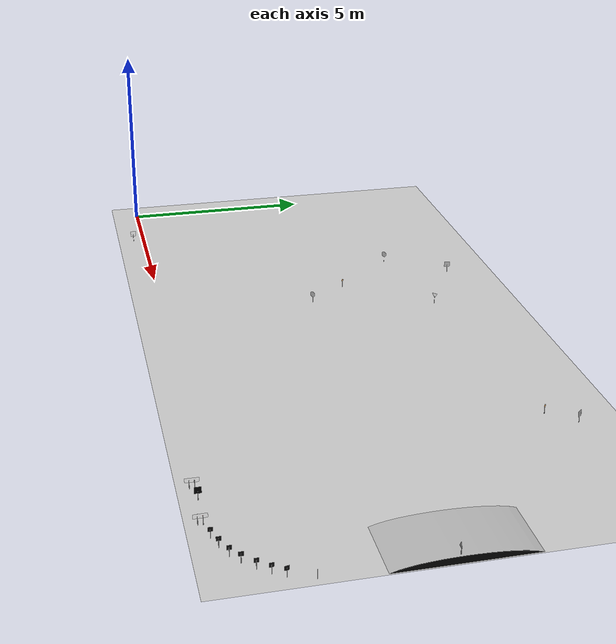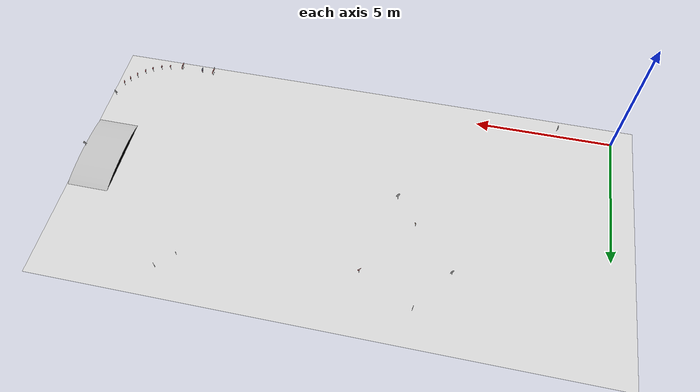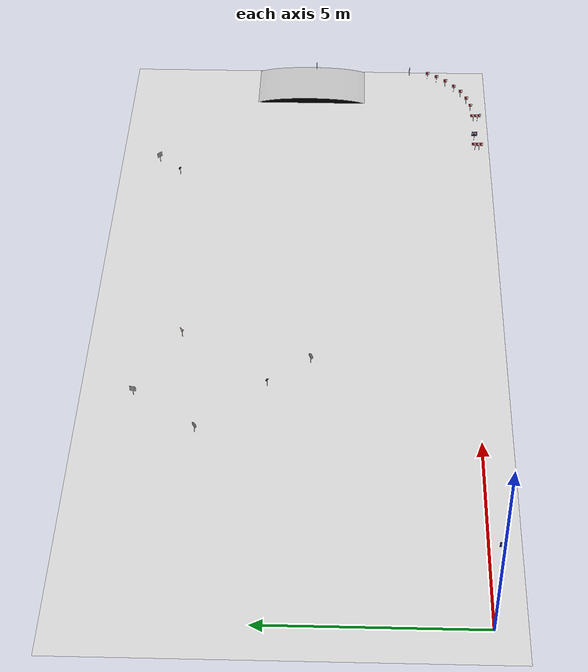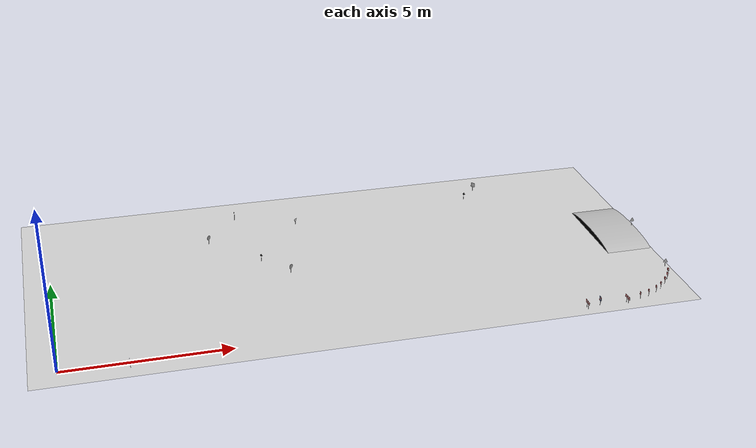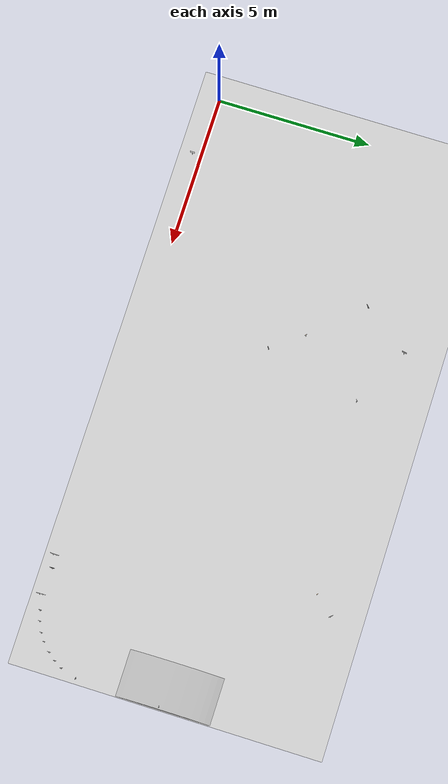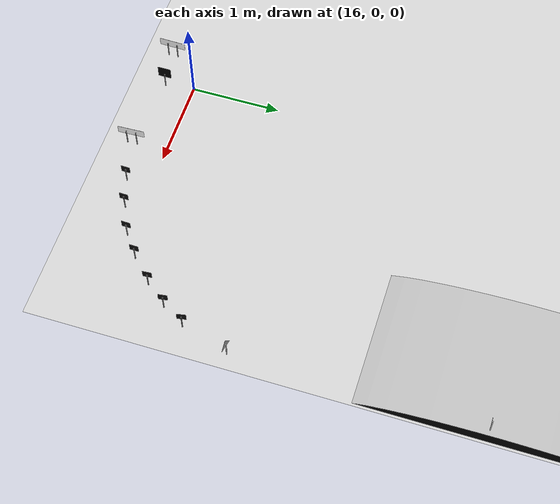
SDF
<sdf version="1.7">
 <world name="cc22_track_v1">
  <model name="track">
   <static>1</static>
   <link name="track">
    <collision name="collision">
     <geometry><plane><normal>0 0 1</normal><size>20 10</size></plane></geometry>
     <surface><friction><ode><mu>100</mu><mu2>50</mu2></ode></friction></surface>
    </collision>
    <visual name="visual">
     <cast_shadows>0</cast_shadows>
     <geometry><plane><normal>0 0 1</normal><size>20 10</size></plane></geometry>
     <material>
      <script>
       <uri>model://cc22_track_v1/materials/scripts</uri>
       <uri>model://cc22_track_v1/materials/textures</uri>
       <name>basic_track/Image</name>
      </script>
     </material>
    </visual>
   </link>
   <pose>9.19 4.29 0 0 -0 0</pose>
  </model>
  <gravity>0 0 -9.8</gravity>
  <magnetic_field>6e-06 2.3e-05 -4.2e-05</magnetic_field>
  <atmosphere type="adiabatic"/>
  <physics type="ode">
   <max_step_size>0.001</max_step_size>
   <real_time_factor>1</real_time_factor>
   <real_time_update_rate>1000</real_time_update_rate>
  </physics>
  <scene><ambient>0.4 0.4 0.4 1</ambient><background>0.7 0.7 0.7 1</background><shadows>1</shadows></scene>
  <spherical_coordinates>
   <surface_model>EARTH_WGS84</surface_model>
   <latitude_deg>0</latitude_deg>
   <longitude_deg>0</longitude_deg>
   <elevation>0</elevation>
   <heading_deg>0</heading_deg>
  </spherical_coordinates>
  <model name="Parking_zone">
   <pose>1.98924 -0.282898 0 0 0 -1.55626</pose>
   <static>1</static>
   <link name="body">
    <visual name="visual">
     <geometry><mesh><uri>model://meshes/Parking_zone.dae</uri><scale>1 1 1</scale></mesh></geometry>
    </visual>
   </link>
  </model>
  <light name="sun" type="directional">
   <pose>9.95372 2.97949 10 0 -0 0</pose>
   <diffuse>0.8 0.8 0.8 1</diffuse>
   <specular>0.2 0.2 0.2 1</specular>
   <attenuation>
    <range>1000</range>
    <constant>0.9</constant>
    <linear>0.01</linear>
    <quadratic>0.001</quadratic>
   </attenuation>
   <direction>-0.5 0.1 -0.9</direction>
   <spot><inner_angle>0</inner_angle><outer_angle>0</outer_angle><falloff>0</falloff></spot>
  </light>
  <model name="Sharp_turn_left_long_2_legs">
   <pose>15.6003 -0.384251 0 0 0 -1.597</pose>
   <static>1</static>
   <link name="body">
    <visual name="visual">
     <geometry>
      <mesh><uri>model://meshes/Sharp_turn_left_long_2_legs.dae</uri><scale>1 1 1</scale></mesh>
     </geometry>
    </visual>
   </link>
  </model>
  <model name="Sharp_turn_left_long_2_legs_clone">
   <pose>16.8885 -0.394299 0 0 0 -1.53922</pose>
   <static>1</static>
   <link name="body">
    <visual name="visual">
     <geometry>
      <mesh><uri>model://meshes/Sharp_turn_left_long_2_legs.dae</uri><scale>1 1 1</scale></mesh>
     </geometry>
    </visual>
   </link>
  </model>
  <model name="Sharp_turn_left_short">
   <pose>17.3687 -0.271797 0 0 0 -1.59471</pose>
   <static>1</static>
   <link name="body">
    <visual name="visual">
     <geometry><mesh><uri>model://meshes/Sharp_turn_left_short.dae</uri><scale>1 1 1</scale></mesh></geometry>
    </visual>
   </link>
  </model>
  <model name="Sharp_turn_left_short_clone">
   <pose>17.6963 -0.166184 0 0 0 -1.59471</pose>
   <static>1</static>
   <link name="body">
    <visual name="visual">
     <geometry><mesh><uri>model://meshes/Sharp_turn_left_short.dae</uri><scale>1 1 1</scale></mesh></geometry>
    </visual>
   </link>
  </model>
  <model name="Sharp_turn_left_short_clone_0">
   <pose>18.0158 -0.018092 0 0 0 -1.59471</pose>
   <static>1</static>
   <link name="body">
    <visual name="visual">
     <geometry><mesh><uri>model://meshes/Sharp_turn_left_short.dae</uri><scale>1 1 1</scale></mesh></geometry>
    </visual>
   </link>
  </model>
  <model name="Sharp_turn_left_short_clone_1">
   <pose>18.2577 0.162746 0 0 0 -1.59471</pose>
   <static>1</static>
   <link name="body">
    <visual name="visual">
     <geometry><mesh><uri>model://meshes/Sharp_turn_left_short.dae</uri><scale>1 1 1</scale></mesh></geometry>
    </visual>
   </link>
  </model>
  <model name="Sharp_turn_left_short_clone_2">
   <pose>18.5106 0.401209 0 0 0 -1.50149</pose>
   <static>1</static>
   <link name="body">
    <visual name="visual">
     <geometry><mesh><uri>model://meshes/Sharp_turn_left_short.dae</uri><scale>1 1 1</scale></mesh></geometry>
    </visual>
   </link>
  </model>
  <model name="Sharp_turn_left_short_clone_3">
   <pose>18.7112 0.644653 0 0 0 -1.4379</pose>
   <static>1</static>
   <link name="body">
    <visual name="visual">
     <geometry><mesh><uri>model://meshes/Sharp_turn_left_short.dae</uri><scale>1 1 1</scale></mesh></geometry>
    </visual>
   </link>
  </model>
  <model name="Sharp_turn_left_short_clone_4">
   <pose>18.8634 0.898232 0 0 0 -1.38852</pose>
   <static>1</static>
   <link name="body">
    <visual name="visual">
     <geometry><mesh><uri>model://meshes/Sharp_turn_left_short.dae</uri><scale>1 1 1</scale></mesh></geometry>
    </visual>
   </link>
  </model>
  <model name="Expressway_end">
   <pose>16.0311 -0.320557 0 0 0 -1.57548</pose>
   <static>1</static>
   <link name="body">
    <visual name="visual">
     <geometry><mesh><uri>model://meshes/Expressway_end.dae</uri><scale>1 1 1</scale></mesh></geometry>
    </visual>
   </link>
  </model>
  <model name="Zebra_crossing">
   <pose>6.26236 8.03524 0 0 0 -1.74218</pose>
   <static>1</static>
   <link name="body">
    <visual name="visual">
     <geometry><mesh><uri>model://meshes/Zebra_crossing.dae</uri><scale>1 1 1</scale></mesh></geometry>
    </visual>
   </link>
  </model>
  <model name="Downhill_grade">
   <pose>19.1046 4.09776 0.144093 0 -0 0</pose>
   <static>1</static>
   <link name="body">
    <visual name="visual">
     <geometry><mesh><uri>model://meshes/Downhill_grade.dae</uri><scale>1 1 1</scale></mesh></geometry>
    </visual>
   </link>
  </model>
  <model name="Uphill_grade">
   <pose>19.0243 1.41754 0 0 0 -0.221037</pose>
   <static>1</static>
   <link name="body">
    <visual name="visual">
     <geometry><mesh><uri>model://meshes/Uphill_grade.dae</uri><scale>1 1 1</scale></mesh></geometry>
    </visual>
   </link>
  </model>
  <model name="30_Zone">
   <pose>14.8988 8.26058 0 0 -0 2.27141</pose>
   <static>1</static>
   <link name="body">
    <visual name="visual">
     <geometry><mesh><uri>model://meshes/30_Zone.dae</uri><scale>1 1 1</scale></mesh></geometry>
    </visual>
   </link>
  </model>
  <model name="Preference">
   <pose>14.3654 7.66537 0 0 -0 2.30628</pose>
   <static>1</static>
   <link name="body">
    <visual name="visual">
     <geometry><mesh><uri>model://meshes/Preference.dae</uri><scale>1 1 1</scale></mesh></geometry>
    </visual>
   </link>
  </model>
  <light name="user_point_light_0_clone_1" type="point">
   <pose>19.8845 4.93206 3.52695 0 -0 0</pose>
   <diffuse>0.494118 0.494118 0.494118 1</diffuse>
   <specular>0.0901961 0.0901961 0.0901961 1</specular>
   <direction>0 0 -1</direction>
   <attenuation><range>30</range><constant>0.1</constant><linear>0</linear><quadratic>0</quadratic></attenuation>
   <cast_shadows>0</cast_shadows>
   <spot><inner_angle>0</inner_angle><outer_angle>0</outer_angle><falloff>0</falloff></spot>
  </light>
  <light name="user_point_light_0_clone_1_clone_clone" type="point">
   <pose>19.9276 7.47045 3.52695 0 -0 0</pose>
   <diffuse>0.494118 0.494118 0.494118 1</diffuse>
   <specular>0.0901961 0.0901961 0.0901961 1</specular>
   <direction>0 0 -1</direction>
   <attenuation><range>30</range><constant>0.1</constant><linear>0</linear><quadratic>0</quadratic></attenuation>
   <cast_shadows>0</cast_shadows>
   <spot><inner_angle>0</inner_angle><outer_angle>0</outer_angle><falloff>0</falloff></spot>
  </light>
  <model name="Stop">
   <pose>7.40622 3.93788 0 0 -0 0.707659</pose>
   <static>1</static>
   <link name="body">
    <visual name="visual">
     <geometry><mesh><uri>model://meshes/Stop.dae</uri><scale>1 1 1</scale></mesh></geometry>
    </visual>
   </link>
  </model>
  <model name="Preference_0">
   <pose>6.63736 4.93916 0 0 -0 2.28536</pose>
   <static>1</static>
   <link name="body">
    <visual name="visual">
     <geometry><mesh><uri>model://meshes/Preference.dae</uri><scale>1 1 1</scale></mesh></geometry>
    </visual>
   </link>
  </model>
  <model name="Stop_0">
   <pose>5.17796 6.51667 0 0 -0 0.75532</pose>
   <static>1</static>
   <link name="body">
    <visual name="visual">
     <geometry><mesh><uri>model://meshes/Stop.dae</uri><scale>1 1 1</scale></mesh></geometry>
    </visual>
   </link>
  </model>
  <model name="Give_way">
   <pose>8.19203 7.06632 0 0 0 -2.39632</pose>
   <static>1</static>
   <link name="body">
    <visual name="visual">
     <geometry><mesh><uri>model://meshes/Give_way.dae</uri><scale>1 1 1</scale></mesh></geometry>
    </visual>
   </link>
  </model>
  <model name="Ramp">
   <pose>18.4114 4.22846 -0.017757 0 0 -1.57058</pose>
   <static>1</static>
   <link name="body">
    <collision name="collision">
     <geometry><mesh><uri>model://meshes/Ramp.stl</uri><scale>1 1 1</scale></mesh></geometry>
    </collision>
    <visual name="visual">
     <geometry><mesh><uri>model://meshes/Ramp.dae</uri><scale>1 1 1</scale></mesh></geometry>
    </visual>
   </link>
  </model>
  <light name="user_point_light_0_clone_1_clone_clone_clone" type="point">
   <pose>9.01632 2.36312 3.52695 0 -0 0</pose>
   <diffuse>0.494118 0.494118 0.494118 1</diffuse>
   <specular>0.0901961 0.0901961 0.0901961 1</specular>
   <direction>0 0 -1</direction>
   <attenuation><range>30</range><constant>0.1</constant><linear>0</linear><quadratic>0</quadratic></attenuation>
   <cast_shadows>0</cast_shadows>
  </light>
  <light name="user_point_light_0_clone_1_clone_clone_clone_clone" type="point">
   <pose>-1.51045 -0.097396 3.52695 0 -0 0</pose>
   <diffuse>0.494118 0.494118 0.494118 1</diffuse>
   <specular>0.0901961 0.0901961 0.0901961 1</specular>
   <direction>0 0 -1</direction>
   <attenuation><range>30</range><constant>0.1</constant><linear>0</linear><quadratic>0</quadratic></attenuation>
   <cast_shadows>0</cast_shadows>
  </light>
 </world>
</sdf>
